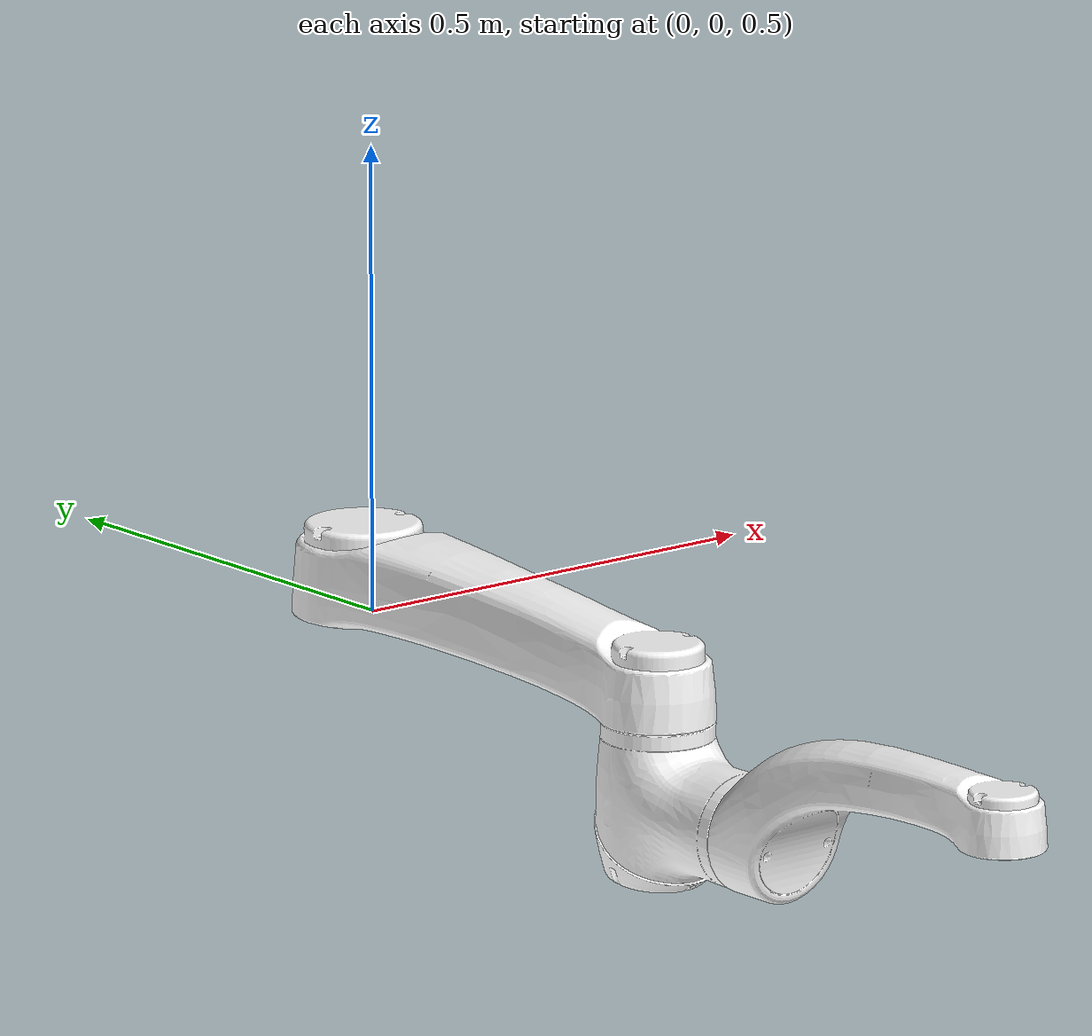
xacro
<robot
  name="elfin10" xmlns:xacro="http://www.ros.org/wiki/xacro">

  <xacro:include filename="$(find elfin_description)/urdf/materials.xacro" />

  <xacro:include filename="$(find elfin_description)/urdf/modules/modules.gazebo" />

  <xacro:include filename="$(find elfin_description)/urdf/modules/modules_transmission.xacro" />

  <xacro:property name="PI" value="3.1415926535897931"/>

  <xacro:property name="density" value="3.09"/>

  <link name="world"/>

  <joint name="world_base" type="fixed">
    <origin
      xyz="0 0 0"
      rpy="0 0 0" />
    <parent
      link="world" />
    <child
      link="elfin_base" />
  </joint>

  <link name="elfin_base"/>

  <joint name="elfin_module_base_joint" type="fixed">
    <origin
      xyz="0 0 0.5"
      rpy="0 0 0" />
    <parent
      link="elfin_base" />
    <child
      link="elfin_module_link" />
  </joint>

<link
    name="elfin_module_link">
    <inertial>
      <origin
        xyz="-0.00733875204652666 -0.203204758586133 0.0410958376319429"
        rpy="0 0 0" />
      <mass
        value="1.67187821121901" />
      <inertia
        ixx="0.0439464748772139"
        ixy="-9.56963727666492E-06"
        ixz="-5.81264740217952E-07"
        iyy="0.00419748327993436"
        iyz="-0.00166261669205279"
        izz="0.0454846532898179" />
    </inertial>
    <visual>
      <origin
        xyz="0 0 0"
        rpy="0 0 0" />
      <geometry>
        <mesh
          filename="package://elfin_description/meshes/elfin10/elfin_link2.STL" />
      </geometry>
      <material
        name="">
        <color
          rgba="1 1 1 1" />
      </material>
    </visual>
    <collision>
      <origin
        xyz="0 0 0"
        rpy="0 0 0" />
      <geometry>
        <mesh
          filename="package://elfin_description/meshes/elfin10/elfin_link2.STL" />
      </geometry>
    </collision>
  </link>

  <link
    name="elfin_module_link1">
    <inertial>
      <origin
        xyz="2.41698443355562E-05 -0.0521743520401219 -0.0560418101258959"
        rpy="0 0 0" />
      <mass
        value="2.52833871519162" />
      <inertia
        ixx="0.0139633942538435"
        ixy="-3.226921129389E-06"
        ixz="2.15712479037642E-06"
        iyy="0.00648774151674613"
        iyz="-0.00342599914450158"
        izz="0.0122349254525393" />
    </inertial>
    <visual>
      <origin
        xyz="0 0 0"
        rpy="0 0 0" />
      <geometry>
        <mesh
          filename="package://elfin_description/meshes/elfin10/elfin_link3.STL" />
      </geometry>
      <material
        name="">
        <color
          rgba="1 1 1 1" />
      </material>
    </visual>
    <collision>
      <origin
        xyz="0 0 0"
        rpy="0 0 0" />
      <geometry>
        <mesh
          filename="package://elfin_description/meshes/elfin10/elfin_link3.STL" />
      </geometry>
    </collision>
  </link>

  <joint
    name="elfin_module_joint1"
    type="revolute">
    <origin
      xyz="-0.00732886700183536 -0.473255648966734 -0.0245000000000048"
      rpy="0 0 0" />
    <parent
      link="elfin_module_link" />
    <child
      link="elfin_module_link1" />
    <axis
      xyz="0 0 -1" />
    <limit
      lower="-2.61"
      upper="2.61"
      effort="200"
      velocity="1.57" />
  </joint>

<link
    name="elfin_module_link2">
     <inertial>
      <origin
        xyz="-0.0655157891899572 -1.82308655212263E-05 0.15837470257518"
        rpy="0 0 0" />
      <mass
        value="0.775104782083546" />
      <inertia
        ixx="0.0114555561082403"
        ixy="2.19094484211439E-07"
        ixz="0.00266651463452"
        iyy="0.0123478082621956"
        iyz="-1.64179944498674E-06"
        izz="0.00252810456539086" />
    </inertial>
    <visual>
      <origin
        xyz="0 0 0"
        rpy="0 0 0" />
      <geometry>
        <mesh
          filename="package://elfin_description/meshes/elfin10/elfin_link4.STL" />
      </geometry>
      <material
        name="">
        <color
          rgba="1 1 1 1" />
      </material>
    </visual>
    <collision>
      <origin
        xyz="0 0 0"
        rpy="0 0 0" />
      <geometry>
        <mesh
          filename="package://elfin_description/meshes/elfin10/elfin_link4.STL" />
      </geometry>
    </collision>
  </link>

  <joint
    name="elfin_module_joint2"
    type="revolute">
    <origin
      xyz="0 -0.146499999728183 -0.0779999855743914"
      rpy="1.5707963267949 1.5707963267949 0" />
    <parent
      link="elfin_module_link1" />
    <child
      link="elfin_module_link2" />
    <axis
      xyz="0 0 -1" />
    <limit
      lower="-3.14"
      upper="3.14"
      effort="200"
      velocity="1.57" />
  </joint>

</robot>

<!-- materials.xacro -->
<robot xmlns:xacro="http://www.ros.org/wiki/xacro">

  <material name="black">
    <color rgba="0.0 0.0 0.0 1.0"/>
  </material>

  <material name="blue">
    <color rgba="0.0 0.0 0.8 1.0"/>
  </material>

  <material name="green">
    <color rgba="0.0 0.8 0.0 1.0"/>
  </material>

  <material name="grey">
    <color rgba="0.2 0.2 0.2 1.0"/>
  </material>

  <material name="orange">
    <color rgba="${255/255} ${108/255} ${10/255} 1.0"/>
  </material>

  <material name="brown">
    <color rgba="${222/255} ${207/255} ${195/255} 1.0"/>
  </material>

  <material name="red">
    <color rgba="0.8 0.0 0.0 1.0"/>
  </material>

  <material name="white">
    <color rgba="1.0 1.0 1.0 1.0"/>
  </material>

  <material name="metal">
    <color rgba="0.768627450980392 0.749019607843137 0.729411764705882 1" />
  </material>

  <material name="metal_grey">
    <color rgba="0.501960784313725 0.501960784313725 0.501960784313725 1" />
  </material>

  <material name="metal_white">
    <color rgba="0.866666666666667 0.866666666666667 0.890196078431373 1" />
  </material>

</robot>
